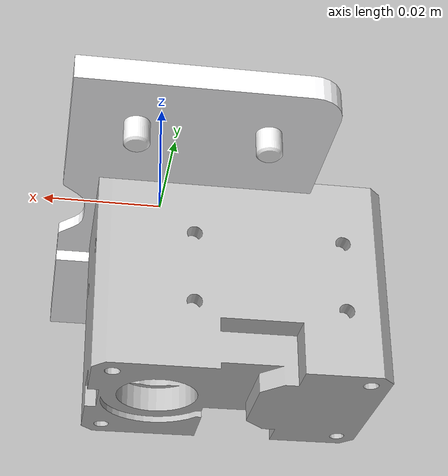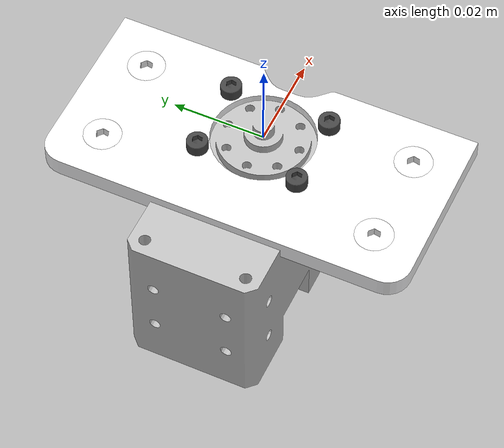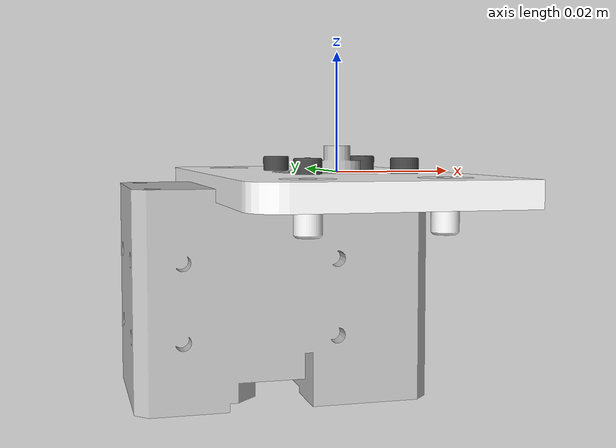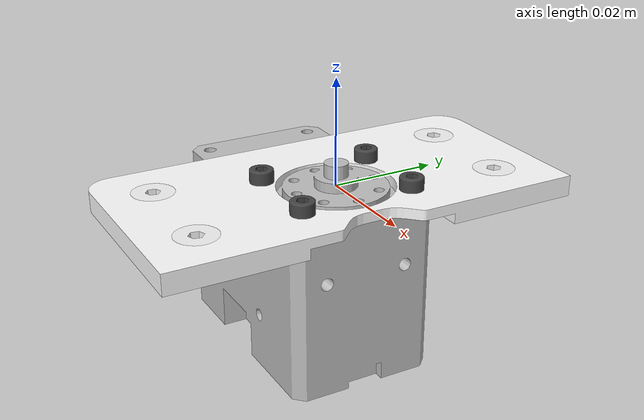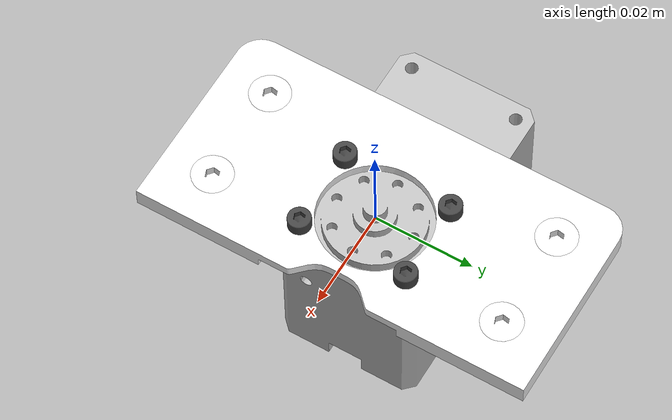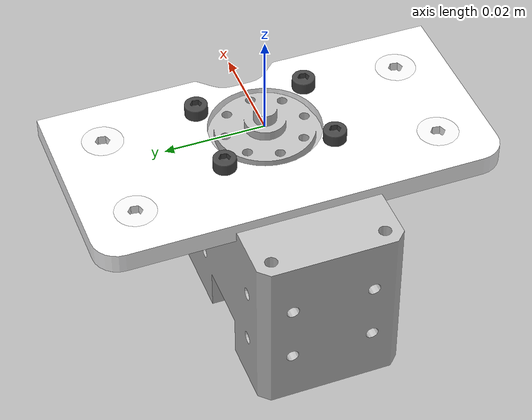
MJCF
<mujoco model="PAN_TILT_1">
  <default>
    <default class="visual">
      <geom group="2" type="mesh" contype="0" conaffinity="0"/>
    </default>
    <default class="collision">
      <geom group="3" type="mesh"/>
    </default>
  </default>
  <asset>
    <material name="254,254,255" specular="0.9973853333333333" shininess="1.0" rgba="0.996078 0.996078 1.000000 1.000000"/>
    <material name="191,191,191" specular="0.0" shininess="0.3" rgba="0.749020 0.749020 0.749020 1.000000"/>
    <material name="69,69,69" specular="1.0" shininess="1.0" rgba="0.270588 0.270588 0.270588 1.000000"/>
    <material name="244,244,244" specular="0.9568629999999999" shininess="1.0" rgba="0.956863 0.956863 0.956863 1.000000"/>
    <mesh file="PAN_TILT_1_0.obj"/>
    <mesh file="PAN_TILT_1_1.obj"/>
    <mesh file="PAN_TILT_1_2.obj"/>
    <mesh file="PAN_TILT_1_3.obj"/>
    <mesh file="PAN_TILT_1_collision_0.obj"/>
    <mesh file="PAN_TILT_1_collision_1.obj"/>
    <mesh file="PAN_TILT_1_collision_2.obj"/>
    <mesh file="PAN_TILT_1_collision_3.obj"/>
    <mesh file="PAN_TILT_1_collision_4.obj"/>
    <mesh file="PAN_TILT_1_collision_5.obj"/>
    <mesh file="PAN_TILT_1_collision_6.obj"/>
    <mesh file="PAN_TILT_1_collision_7.obj"/>
    <mesh file="PAN_TILT_1_collision_8.obj"/>
    <mesh file="PAN_TILT_1_collision_9.obj"/>
    <mesh file="PAN_TILT_1_collision_10.obj"/>
    <mesh file="PAN_TILT_1_collision_11.obj"/>
    <mesh file="PAN_TILT_1_collision_12.obj"/>
    <mesh file="PAN_TILT_1_collision_13.obj"/>
    <mesh file="PAN_TILT_1_collision_14.obj"/>
    <mesh file="PAN_TILT_1_collision_15.obj"/>
    <mesh file="PAN_TILT_1_collision_16.obj"/>
    <mesh file="PAN_TILT_1_collision_17.obj"/>
    <mesh file="PAN_TILT_1_collision_18.obj"/>
    <mesh file="PAN_TILT_1_collision_19.obj"/>
    <mesh file="PAN_TILT_1_collision_20.obj"/>
    <mesh file="PAN_TILT_1_collision_21.obj"/>
    <mesh file="PAN_TILT_1_collision_22.obj"/>
    <mesh file="PAN_TILT_1_collision_23.obj"/>
    <mesh file="PAN_TILT_1_collision_24.obj"/>
    <mesh file="PAN_TILT_1_collision_25.obj"/>
    <mesh file="PAN_TILT_1_collision_26.obj"/>
    <mesh file="PAN_TILT_1_collision_27.obj"/>
    <mesh file="PAN_TILT_1_collision_28.obj"/>
    <mesh file="PAN_TILT_1_collision_29.obj"/>
    <mesh file="PAN_TILT_1_collision_30.obj"/>
    <mesh file="PAN_TILT_1_collision_31.obj"/>
  </asset>
  <worldbody>
    <body name="PAN_TILT_1">
      <geom mesh="PAN_TILT_1_0" material="244,244,244" class="visual"/>
      <geom mesh="PAN_TILT_1_1" material="69,69,69" class="visual"/>
      <geom mesh="PAN_TILT_1_2" material="191,191,191" class="visual"/>
      <geom mesh="PAN_TILT_1_3" material="254,254,255" class="visual"/>
      <geom mesh="PAN_TILT_1_collision_0" rgba="0.22318475595005138 0.7795837768825066 0.6792192203592996 1" class="collision"/>
      <geom mesh="PAN_TILT_1_collision_1" rgba="0.36255013135013725 0.46991306121054155 0.5758728910872426 1" class="collision"/>
      <geom mesh="PAN_TILT_1_collision_2" rgba="0.8562650333228687 0.1670305758543752 0.649359156541545 1" class="collision"/>
      <geom mesh="PAN_TILT_1_collision_3" rgba="0.9810756490747145 0.5204522946047749 0.9785895072869887 1" class="collision"/>
      <geom mesh="PAN_TILT_1_collision_4" rgba="0.6012773680805213 0.38215614127241593 0.774307525093305 1" class="collision"/>
      <geom mesh="PAN_TILT_1_collision_5" rgba="0.9992133922423821 0.3836603419666267 0.33972194861749483 1" class="collision"/>
      <geom mesh="PAN_TILT_1_collision_6" rgba="0.7656720261620573 0.2315814174493963 0.8494532325854435 1" class="collision"/>
      <geom mesh="PAN_TILT_1_collision_7" rgba="0.9583684269737368 0.19005363429514122 0.25307705101463773 1" class="collision"/>
      <geom mesh="PAN_TILT_1_collision_8" rgba="0.4662646926508105 0.9853583813551532 0.11665316131679249 1" class="collision"/>
      <geom mesh="PAN_TILT_1_collision_9" rgba="0.8719161758013844 0.12697758527884828 0.8093831502699473 1" class="collision"/>
      <geom mesh="PAN_TILT_1_collision_10" rgba="0.5854041402670999 0.5008067472760829 0.014565253137993062 1" class="collision"/>
      <geom mesh="PAN_TILT_1_collision_11" rgba="0.1280288004736777 0.4844745424929304 0.21323186854962795 1" class="collision"/>
      <geom mesh="PAN_TILT_1_collision_12" rgba="0.2336986612895613 0.3003503516421858 0.943784852245443 1" class="collision"/>
      <geom mesh="PAN_TILT_1_collision_13" rgba="0.13522102645602363 0.9469358528010933 0.06421460587843175 1" class="collision"/>
      <geom mesh="PAN_TILT_1_collision_14" rgba="0.16058712748877513 0.005461615335205505 0.8596469660787485 1" class="collision"/>
      <geom mesh="PAN_TILT_1_collision_15" rgba="0.8286702303308584 0.043970242401787374 0.6225706968387344 1" class="collision"/>
      <geom mesh="PAN_TILT_1_collision_16" rgba="0.7056142697712804 0.34425206998123514 0.468588504715178 1" class="collision"/>
      <geom mesh="PAN_TILT_1_collision_17" rgba="0.9335764268938856 0.010641127242418835 0.17100611848887437 1" class="collision"/>
      <geom mesh="PAN_TILT_1_collision_18" rgba="0.12730842379138052 0.8338066976922943 0.47175008337036206 1" class="collision"/>
      <geom mesh="PAN_TILT_1_collision_19" rgba="0.9518760089005653 0.5197166727815707 0.7129129979139203 1" class="collision"/>
      <geom mesh="PAN_TILT_1_collision_20" rgba="0.0861101159840022 0.3205316728466413 0.08929009472318383 1" class="collision"/>
      <geom mesh="PAN_TILT_1_collision_21" rgba="0.4607366388421723 0.6051325470392829 0.7781049111743936 1" class="collision"/>
      <geom mesh="PAN_TILT_1_collision_22" rgba="0.22426023112206572 0.3063294926599526 0.5094676299933064 1" class="collision"/>
      <geom mesh="PAN_TILT_1_collision_23" rgba="0.023754972333215885 0.019719009820923894 0.6584768237159515 1" class="collision"/>
      <geom mesh="PAN_TILT_1_collision_24" rgba="0.5966712043574462 0.05187700231210224 0.7841140643795058 1" class="collision"/>
      <geom mesh="PAN_TILT_1_collision_25" rgba="0.4473575803694415 0.20962320121676625 0.9981548354472347 1" class="collision"/>
      <geom mesh="PAN_TILT_1_collision_26" rgba="0.4510762987583198 0.2462402153540345 0.33152581956453686 1" class="collision"/>
      <geom mesh="PAN_TILT_1_collision_27" rgba="0.45925855518473346 0.2685516420173202 0.017647864084009424 1" class="collision"/>
      <geom mesh="PAN_TILT_1_collision_28" rgba="0.3220146378051223 0.5132649476053042 0.3530962820342737 1" class="collision"/>
      <geom mesh="PAN_TILT_1_collision_29" rgba="0.9728753224294568 0.08317566253947806 0.654006410970424 1" class="collision"/>
      <geom mesh="PAN_TILT_1_collision_30" rgba="0.748448045891347 0.36999119560945337 0.08718899956185788 1" class="collision"/>
      <geom mesh="PAN_TILT_1_collision_31" rgba="0.05118102829647764 0.4453113865292764 0.7763909716487577 1" class="collision"/>
    </body>
  </worldbody>
</mujoco>
